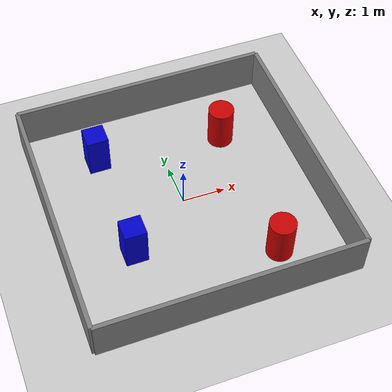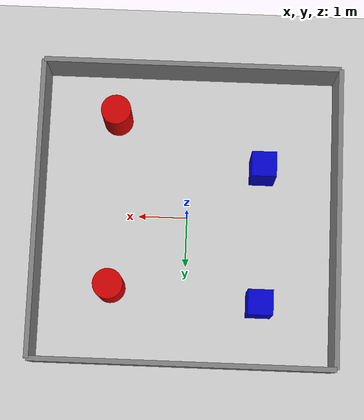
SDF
<?xml version="1.0" ?>
<sdf version="1.9">
  <world name="arena">
    <physics name="1ms" type="ignored">
      <max_step_size>0.001</max_step_size>
      <real_time_factor>1.0</real_time_factor>
    </physics>

    <plugin filename="gz-sim-physics-system" name="gz::sim::systems::Physics"/>
    <plugin filename="gz-sim-user-commands-system" name="gz::sim::systems::UserCommands"/>
    <plugin filename="gz-sim-scene-broadcaster-system" name="gz::sim::systems::SceneBroadcaster"/>
    <plugin filename="gz-sim-sensors-system" name="gz::sim::systems::Sensors">
      <render_engine>ogre2</render_engine>
    </plugin>

    <light type="directional" name="sun">
      <cast_shadows>true</cast_shadows>
      <pose>0 0 10 0 0 0</pose>
      <diffuse>0.8 0.8 0.8 1</diffuse>
      <specular>0.2 0.2 0.2 1</specular>
      <direction>-0.5 0.1 -0.9</direction>
    </light>

    <model name="ground_plane">
      <static>true</static>
      <link name="link">
        <collision name="collision">
          <geometry><plane><normal>0 0 1</normal><size>100 100</size></plane></geometry>
        </collision>
        <visual name="visual">
          <geometry><plane><normal>0 0 1</normal><size>100 100</size></plane></geometry>
          <material>
            <ambient>0.8 0.8 0.8 1</ambient>
            <diffuse>0.8 0.8 0.8 1</diffuse>
          </material>
        </visual>
      </link>
    </model>

    <model name='walls'>
      <pose>0 0 0 0 0 0</pose>
      <static>1</static>
      <link name='link'>
        <visual name='wall_1'>
          <pose>0 3 0.5 0 0 0</pose>
          <geometry><box><size>6 0.1 1</size></box></geometry>
          <material><ambient>0.5 0.5 0.5 1</ambient><diffuse>0.5 0.5 0.5 1</diffuse></material>
        </visual>
        <collision name='wall_1_col'>
          <pose>0 3 0.5 0 0 0</pose>
          <geometry><box><size>6 0.1 1</size></box></geometry>
        </collision>

        <visual name='wall_2'>
          <pose>0 -3 0.5 0 0 0</pose>
          <geometry><box><size>6 0.1 1</size></box></geometry>
          <material><ambient>0.5 0.5 0.5 1</ambient><diffuse>0.5 0.5 0.5 1</diffuse></material>
        </visual>
        <collision name='wall_2_col'>
          <pose>0 -3 0.5 0 0 0</pose>
          <geometry><box><size>6 0.1 1</size></box></geometry>
        </collision>

        <visual name='wall_3'>
          <pose>3 0 0.5 0 0 1.57</pose>
          <geometry><box><size>6 0.1 1</size></box></geometry>
          <material><ambient>0.5 0.5 0.5 1</ambient><diffuse>0.5 0.5 0.5 1</diffuse></material>
        </visual>
        <collision name='wall_3_col'>
          <pose>3 0 0.5 0 0 1.57</pose>
          <geometry><box><size>6 0.1 1</size></box></geometry>
        </collision>

        <visual name='wall_4'>
          <pose>-3 0 0.5 0 0 1.57</pose>
          <geometry><box><size>6 0.1 1</size></box></geometry>
          <material><ambient>0.5 0.5 0.5 1</ambient><diffuse>0.5 0.5 0.5 1</diffuse></material>
        </visual>
        <collision name='wall_4_col'>
          <pose>-3 0 0.5 0 0 1.57</pose>
          <geometry><box><size>6 0.1 1</size></box></geometry>
        </collision>
      </link>
    </model>

    <model name='cylinder_obstacle_1'>
      <pose>1.5 1.5 0.5 0 0 0</pose>
      <static>1</static>
      <link name='link'>
        <visual name='visual'>
          <geometry><cylinder><radius>0.3</radius><length>1.0</length></cylinder></geometry>
          <material><ambient>0.8 0 0 1</ambient><diffuse>0.8 0 0 1</diffuse></material>
        </visual>
        <collision name='collision'>
          <geometry><cylinder><radius>0.3</radius><length>1.0</length></cylinder></geometry>
        </collision>
      </link>
    </model>

    <model name='box_obstacle_2'>
      <pose>-1.5 -1.0 0.5 0 0 0</pose>
      <static>1</static>
      <link name='link'>
        <visual name='visual'>
          <geometry><box><size>0.5 0.5 1.0</size></box></geometry>
          <material><ambient>0 0 0.8 1</ambient><diffuse>0 0 0.8 1</diffuse></material>
        </visual>
        <collision name='collision'>
          <geometry><box><size>0.5 0.5 1.0</size></box></geometry>
        </collision>
      </link>
    </model>

    <model name='box_obstacle_3'>
      <pose>-1.5 1.75 0.5 0 0 0</pose>
      <static>1</static>
      <link name='link'>
        <visual name='visual'>
          <geometry><box><size>0.5 0.5 1.0</size></box></geometry>
          <material><ambient>0 0 0.8 1</ambient><diffuse>0 0 0.8 1</diffuse></material>
        </visual>
        <collision name='collision'>
          <geometry><box><size>0.5 0.5 1.0</size></box></geometry>
        </collision>
      </link>
    </model>

    <model name='cylinder_obstacle_2'>
      <pose>1.5 -2.0 0.5 0 0 0</pose>
      <static>1</static>
      <link name='link'>
        <visual name='visual'>
          <geometry><cylinder><radius>0.3</radius><length>1.0</length></cylinder></geometry>
          <material><ambient>0.8 0 0 1</ambient><diffuse>0.8 0 0 1</diffuse></material>
        </visual>
        <collision name='collision'>
          <geometry><cylinder><radius>0.3</radius><length>1.0</length></cylinder></geometry>
        </collision>
      </link>
    </model>

  </world>
</sdf>
